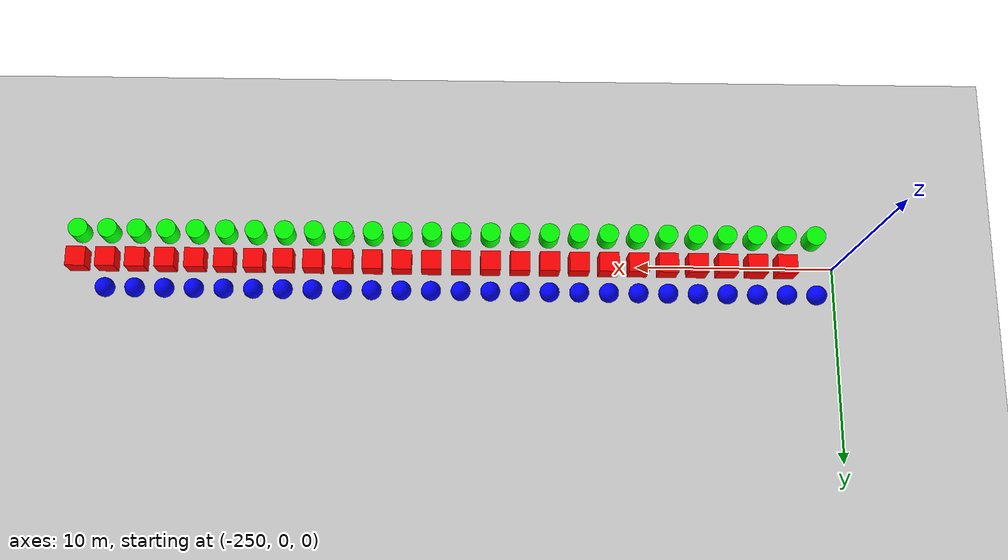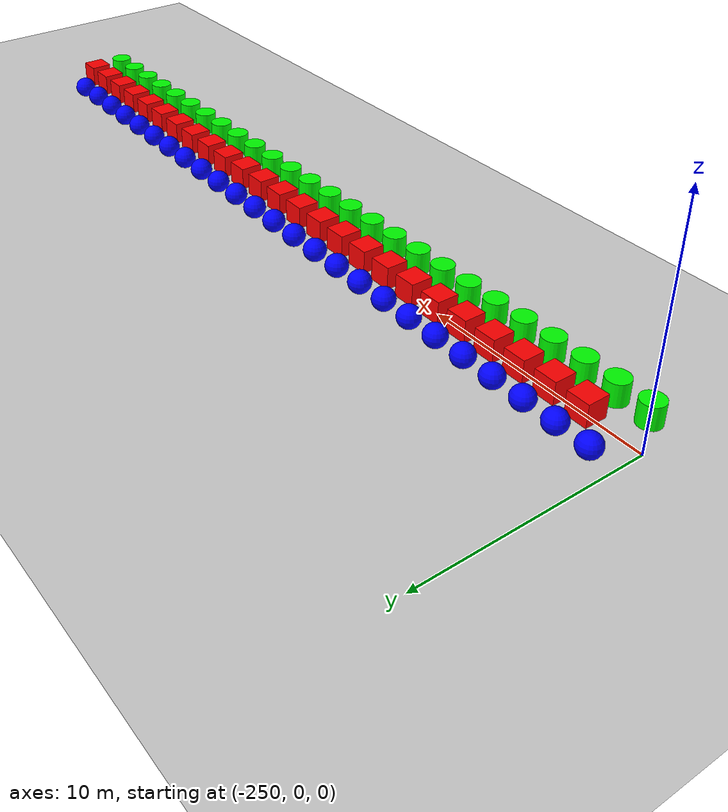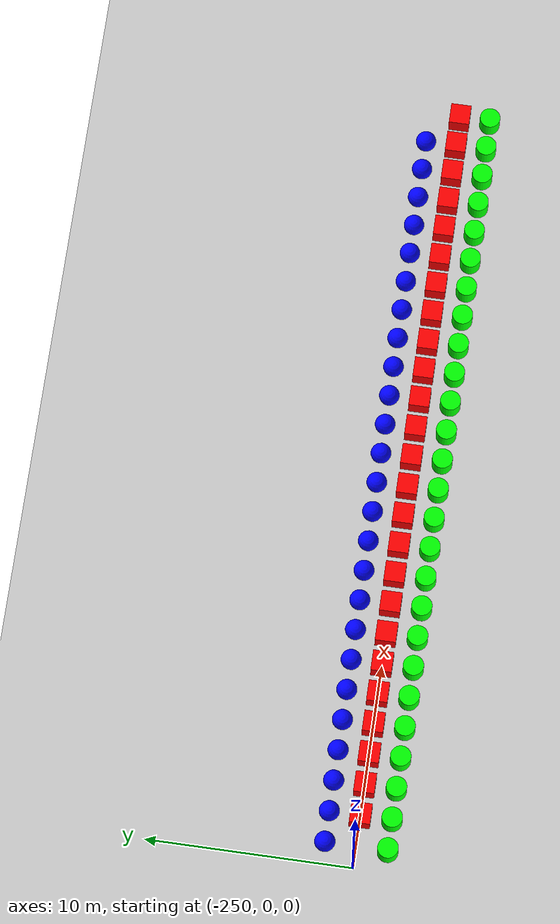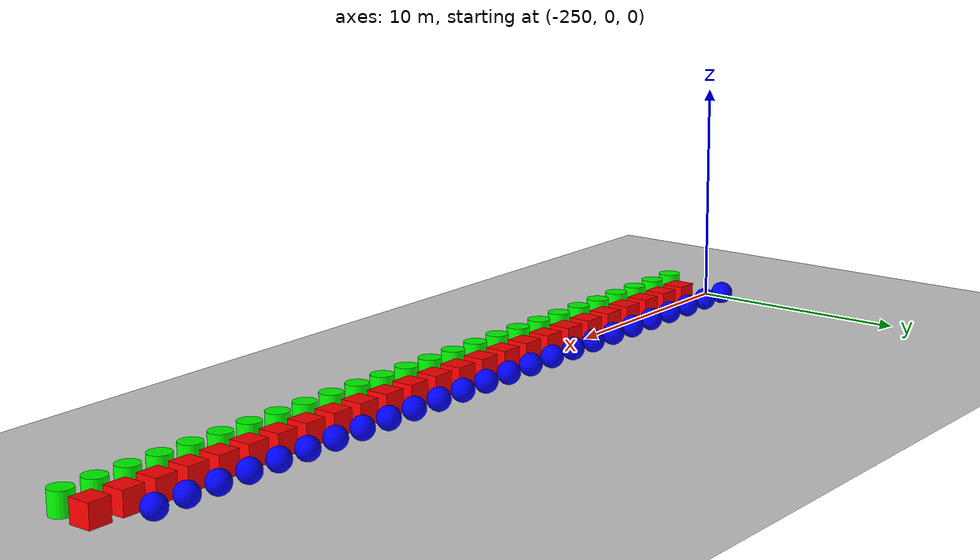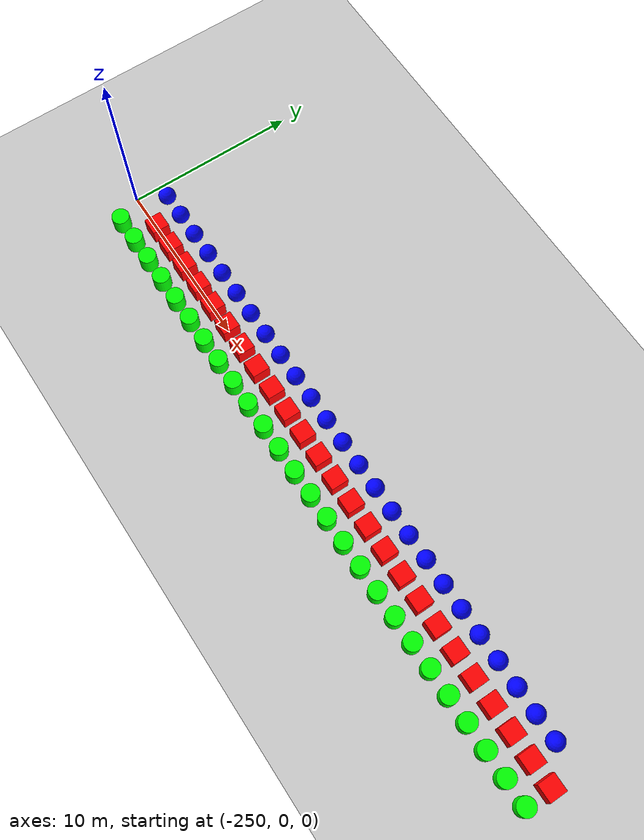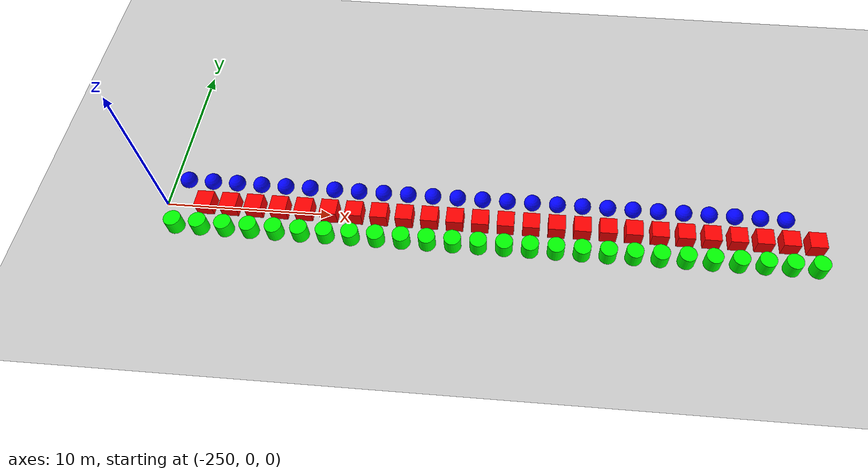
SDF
<sdf version="1.6">
 <world name="shapes">
  <model name="ground_plane">
   <static>true</static>
   <link name="link">
    <collision name="collision">
     <geometry><plane><normal>0 0 1</normal><size>100 100</size></plane></geometry>
    </collision>
    <visual name="visual">
     <geometry><plane><normal>0 0 1</normal><size>100 100</size></plane></geometry>
     <material>
      <ambient>0.8 0.8 0.8 1</ambient>
      <diffuse>0.8 0.8 0.8 1</diffuse>
      <specular>0.8 0.8 0.8 1</specular>
     </material>
    </visual>
   </link>
  </model>
  <model name="cylinder_334">
   <static>false</static>
   <pose>-249.0 -1.5 0.5 0 0 0</pose>
   <link name="cylinder_link">
    <inertial>
     <inertia><ixx>2</ixx><ixy>0</ixy><ixz>0</ixz><iyy>2</iyy><iyz>0</iyz><izz>2</izz></inertia>
     <mass>2.0</mass>
    </inertial>
    <collision name="cylinder_collision">
     <geometry><cylinder><radius>0.5</radius><length>1.0</length></cylinder></geometry>
    </collision>
    <visual name="cylinder_visual">
     <geometry><cylinder><radius>0.5</radius><length>1.0</length></cylinder></geometry>
     <material><ambient>0 1 0 1</ambient><diffuse>0 1 0 1</diffuse><specular>0 1 0 1</specular></material>
    </visual>
   </link>
  </model>
  <model name="sphere_334">
   <static>false</static>
   <pose>-249.0 1.5 0.5 0 0 0</pose>
   <link name="sphere_link">
    <inertial>
     <inertia><ixx>3</ixx><ixy>0</ixy><ixz>0</ixz><iyy>3</iyy><iyz>0</iyz><izz>3</izz></inertia>
     <mass>3.0</mass>
    </inertial>
    <collision name="sphere_collision"><geometry><sphere><radius>0.5</radius></sphere></geometry></collision>
    <visual name="sphere_visual">
     <geometry><sphere><radius>0.5</radius></sphere></geometry>
     <material><ambient>0 0 1 1</ambient><diffuse>0 0 1 1</diffuse><specular>0 0 1 1</specular></material>
    </visual>
   </link>
  </model>
  <model name="box_335">
   <static>false</static>
   <pose>-247.5 0 0.5 0 0 0</pose>
   <link name="box_link">
    <inertial>
     <inertia><ixx>1</ixx><ixy>0</ixy><ixz>0</ixz><iyy>1</iyy><iyz>0</iyz><izz>1</izz></inertia>
     <mass>1.0</mass>
    </inertial>
    <collision name="box_collision"><geometry><box><size>1 1 1</size></box></geometry></collision>
    <visual name="box_visual">
     <geometry><box><size>1 1 1</size></box></geometry>
     <material><ambient>1 0 0 1</ambient><diffuse>1 0 0 1</diffuse><specular>1 0 0 1</specular></material>
    </visual>
   </link>
  </model>
  <model name="cylinder_335">
   <static>false</static>
   <pose>-247.5 -1.5 0.5 0 0 0</pose>
   <link name="cylinder_link">
    <inertial>
     <inertia><ixx>2</ixx><ixy>0</ixy><ixz>0</ixz><iyy>2</iyy><iyz>0</iyz><izz>2</izz></inertia>
     <mass>2.0</mass>
    </inertial>
    <collision name="cylinder_collision">
     <geometry><cylinder><radius>0.5</radius><length>1.0</length></cylinder></geometry>
    </collision>
    <visual name="cylinder_visual">
     <geometry><cylinder><radius>0.5</radius><length>1.0</length></cylinder></geometry>
     <material><ambient>0 1 0 1</ambient><diffuse>0 1 0 1</diffuse><specular>0 1 0 1</specular></material>
    </visual>
   </link>
  </model>
  <model name="sphere_335">
   <static>false</static>
   <pose>-247.5 1.5 0.5 0 0 0</pose>
   <link name="sphere_link">
    <inertial>
     <inertia><ixx>3</ixx><ixy>0</ixy><ixz>0</ixz><iyy>3</iyy><iyz>0</iyz><izz>3</izz></inertia>
     <mass>3.0</mass>
    </inertial>
    <collision name="sphere_collision"><geometry><sphere><radius>0.5</radius></sphere></geometry></collision>
    <visual name="sphere_visual">
     <geometry><sphere><radius>0.5</radius></sphere></geometry>
     <material><ambient>0 0 1 1</ambient><diffuse>0 0 1 1</diffuse><specular>0 0 1 1</specular></material>
    </visual>
   </link>
  </model>
  <model name="box_336">
   <static>false</static>
   <pose>-246.0 0 0.5 0 0 0</pose>
   <link name="box_link">
    <inertial>
     <inertia><ixx>1</ixx><ixy>0</ixy><ixz>0</ixz><iyy>1</iyy><iyz>0</iyz><izz>1</izz></inertia>
     <mass>1.0</mass>
    </inertial>
    <collision name="box_collision"><geometry><box><size>1 1 1</size></box></geometry></collision>
    <visual name="box_visual">
     <geometry><box><size>1 1 1</size></box></geometry>
     <material><ambient>1 0 0 1</ambient><diffuse>1 0 0 1</diffuse><specular>1 0 0 1</specular></material>
    </visual>
   </link>
  </model>
  <model name="cylinder_336">
   <static>false</static>
   <pose>-246.0 -1.5 0.5 0 0 0</pose>
   <link name="cylinder_link">
    <inertial>
     <inertia><ixx>2</ixx><ixy>0</ixy><ixz>0</ixz><iyy>2</iyy><iyz>0</iyz><izz>2</izz></inertia>
     <mass>2.0</mass>
    </inertial>
    <collision name="cylinder_collision">
     <geometry><cylinder><radius>0.5</radius><length>1.0</length></cylinder></geometry>
    </collision>
    <visual name="cylinder_visual">
     <geometry><cylinder><radius>0.5</radius><length>1.0</length></cylinder></geometry>
     <material><ambient>0 1 0 1</ambient><diffuse>0 1 0 1</diffuse><specular>0 1 0 1</specular></material>
    </visual>
   </link>
  </model>
  <model name="sphere_336">
   <static>false</static>
   <pose>-246.0 1.5 0.5 0 0 0</pose>
   <link name="sphere_link">
    <inertial>
     <inertia><ixx>3</ixx><ixy>0</ixy><ixz>0</ixz><iyy>3</iyy><iyz>0</iyz><izz>3</izz></inertia>
     <mass>3.0</mass>
    </inertial>
    <collision name="sphere_collision"><geometry><sphere><radius>0.5</radius></sphere></geometry></collision>
    <visual name="sphere_visual">
     <geometry><sphere><radius>0.5</radius></sphere></geometry>
     <material><ambient>0 0 1 1</ambient><diffuse>0 0 1 1</diffuse><specular>0 0 1 1</specular></material>
    </visual>
   </link>
  </model>
  <model name="box_337">
   <static>false</static>
   <pose>-244.5 0 0.5 0 0 0</pose>
   <link name="box_link">
    <inertial>
     <inertia><ixx>1</ixx><ixy>0</ixy><ixz>0</ixz><iyy>1</iyy><iyz>0</iyz><izz>1</izz></inertia>
     <mass>1.0</mass>
    </inertial>
    <collision name="box_collision"><geometry><box><size>1 1 1</size></box></geometry></collision>
    <visual name="box_visual">
     <geometry><box><size>1 1 1</size></box></geometry>
     <material><ambient>1 0 0 1</ambient><diffuse>1 0 0 1</diffuse><specular>1 0 0 1</specular></material>
    </visual>
   </link>
  </model>
  <model name="cylinder_337">
   <static>false</static>
   <pose>-244.5 -1.5 0.5 0 0 0</pose>
   <link name="cylinder_link">
    <inertial>
     <inertia><ixx>2</ixx><ixy>0</ixy><ixz>0</ixz><iyy>2</iyy><iyz>0</iyz><izz>2</izz></inertia>
     <mass>2.0</mass>
    </inertial>
    <collision name="cylinder_collision">
     <geometry><cylinder><radius>0.5</radius><length>1.0</length></cylinder></geometry>
    </collision>
    <visual name="cylinder_visual">
     <geometry><cylinder><radius>0.5</radius><length>1.0</length></cylinder></geometry>
     <material><ambient>0 1 0 1</ambient><diffuse>0 1 0 1</diffuse><specular>0 1 0 1</specular></material>
    </visual>
   </link>
  </model>
  <model name="sphere_337">
   <static>false</static>
   <pose>-244.5 1.5 0.5 0 0 0</pose>
   <link name="sphere_link">
    <inertial>
     <inertia><ixx>3</ixx><ixy>0</ixy><ixz>0</ixz><iyy>3</iyy><iyz>0</iyz><izz>3</izz></inertia>
     <mass>3.0</mass>
    </inertial>
    <collision name="sphere_collision"><geometry><sphere><radius>0.5</radius></sphere></geometry></collision>
    <visual name="sphere_visual">
     <geometry><sphere><radius>0.5</radius></sphere></geometry>
     <material><ambient>0 0 1 1</ambient><diffuse>0 0 1 1</diffuse><specular>0 0 1 1</specular></material>
    </visual>
   </link>
  </model>
  <model name="box_338">
   <static>false</static>
   <pose>-243.0 0 0.5 0 0 0</pose>
   <link name="box_link">
    <inertial>
     <inertia><ixx>1</ixx><ixy>0</ixy><ixz>0</ixz><iyy>1</iyy><iyz>0</iyz><izz>1</izz></inertia>
     <mass>1.0</mass>
    </inertial>
    <collision name="box_collision"><geometry><box><size>1 1 1</size></box></geometry></collision>
    <visual name="box_visual">
     <geometry><box><size>1 1 1</size></box></geometry>
     <material><ambient>1 0 0 1</ambient><diffuse>1 0 0 1</diffuse><specular>1 0 0 1</specular></material>
    </visual>
   </link>
  </model>
  <model name="cylinder_338">
   <static>false</static>
   <pose>-243.0 -1.5 0.5 0 0 0</pose>
   <link name="cylinder_link">
    <inertial>
     <inertia><ixx>2</ixx><ixy>0</ixy><ixz>0</ixz><iyy>2</iyy><iyz>0</iyz><izz>2</izz></inertia>
     <mass>2.0</mass>
    </inertial>
    <collision name="cylinder_collision">
     <geometry><cylinder><radius>0.5</radius><length>1.0</length></cylinder></geometry>
    </collision>
    <visual name="cylinder_visual">
     <geometry><cylinder><radius>0.5</radius><length>1.0</length></cylinder></geometry>
     <material><ambient>0 1 0 1</ambient><diffuse>0 1 0 1</diffuse><specular>0 1 0 1</specular></material>
    </visual>
   </link>
  </model>
  <model name="sphere_338">
   <static>false</static>
   <pose>-243.0 1.5 0.5 0 0 0</pose>
   <link name="sphere_link">
    <inertial>
     <inertia><ixx>3</ixx><ixy>0</ixy><ixz>0</ixz><iyy>3</iyy><iyz>0</iyz><izz>3</izz></inertia>
     <mass>3.0</mass>
    </inertial>
    <collision name="sphere_collision"><geometry><sphere><radius>0.5</radius></sphere></geometry></collision>
    <visual name="sphere_visual">
     <geometry><sphere><radius>0.5</radius></sphere></geometry>
     <material><ambient>0 0 1 1</ambient><diffuse>0 0 1 1</diffuse><specular>0 0 1 1</specular></material>
    </visual>
   </link>
  </model>
  <model name="box_339">
   <static>false</static>
   <pose>-241.5 0 0.5 0 0 0</pose>
   <link name="box_link">
    <inertial>
     <inertia><ixx>1</ixx><ixy>0</ixy><ixz>0</ixz><iyy>1</iyy><iyz>0</iyz><izz>1</izz></inertia>
     <mass>1.0</mass>
    </inertial>
    <collision name="box_collision"><geometry><box><size>1 1 1</size></box></geometry></collision>
    <visual name="box_visual">
     <geometry><box><size>1 1 1</size></box></geometry>
     <material><ambient>1 0 0 1</ambient><diffuse>1 0 0 1</diffuse><specular>1 0 0 1</specular></material>
    </visual>
   </link>
  </model>
  <model name="cylinder_339">
   <static>false</static>
   <pose>-241.5 -1.5 0.5 0 0 0</pose>
   <link name="cylinder_link">
    <inertial>
     <inertia><ixx>2</ixx><ixy>0</ixy><ixz>0</ixz><iyy>2</iyy><iyz>0</iyz><izz>2</izz></inertia>
     <mass>2.0</mass>
    </inertial>
    <collision name="cylinder_collision">
     <geometry><cylinder><radius>0.5</radius><length>1.0</length></cylinder></geometry>
    </collision>
    <visual name="cylinder_visual">
     <geometry><cylinder><radius>0.5</radius><length>1.0</length></cylinder></geometry>
     <material><ambient>0 1 0 1</ambient><diffuse>0 1 0 1</diffuse><specular>0 1 0 1</specular></material>
    </visual>
   </link>
  </model>
  <model name="sphere_339">
   <static>false</static>
   <pose>-241.5 1.5 0.5 0 0 0</pose>
   <link name="sphere_link">
    <inertial>
     <inertia><ixx>3</ixx><ixy>0</ixy><ixz>0</ixz><iyy>3</iyy><iyz>0</iyz><izz>3</izz></inertia>
     <mass>3.0</mass>
    </inertial>
    <collision name="sphere_collision"><geometry><sphere><radius>0.5</radius></sphere></geometry></collision>
    <visual name="sphere_visual">
     <geometry><sphere><radius>0.5</radius></sphere></geometry>
     <material><ambient>0 0 1 1</ambient><diffuse>0 0 1 1</diffuse><specular>0 0 1 1</specular></material>
    </visual>
   </link>
  </model>
  <model name="box_340">
   <static>false</static>
   <pose>-240.0 0 0.5 0 0 0</pose>
   <link name="box_link">
    <inertial>
     <inertia><ixx>1</ixx><ixy>0</ixy><ixz>0</ixz><iyy>1</iyy><iyz>0</iyz><izz>1</izz></inertia>
     <mass>1.0</mass>
    </inertial>
    <collision name="box_collision"><geometry><box><size>1 1 1</size></box></geometry></collision>
    <visual name="box_visual">
     <geometry><box><size>1 1 1</size></box></geometry>
     <material><ambient>1 0 0 1</ambient><diffuse>1 0 0 1</diffuse><specular>1 0 0 1</specular></material>
    </visual>
   </link>
  </model>
  <model name="cylinder_340">
   <static>false</static>
   <pose>-240.0 -1.5 0.5 0 0 0</pose>
   <link name="cylinder_link">
    <inertial>
     <inertia><ixx>2</ixx><ixy>0</ixy><ixz>0</ixz><iyy>2</iyy><iyz>0</iyz><izz>2</izz></inertia>
     <mass>2.0</mass>
    </inertial>
    <collision name="cylinder_collision">
     <geometry><cylinder><radius>0.5</radius><length>1.0</length></cylinder></geometry>
    </collision>
    <visual name="cylinder_visual">
     <geometry><cylinder><radius>0.5</radius><length>1.0</length></cylinder></geometry>
     <material><ambient>0 1 0 1</ambient><diffuse>0 1 0 1</diffuse><specular>0 1 0 1</specular></material>
    </visual>
   </link>
  </model>
  <model name="sphere_340">
   <static>false</static>
   <pose>-240.0 1.5 0.5 0 0 0</pose>
   <link name="sphere_link">
    <inertial>
     <inertia><ixx>3</ixx><ixy>0</ixy><ixz>0</ixz><iyy>3</iyy><iyz>0</iyz><izz>3</izz></inertia>
     <mass>3.0</mass>
    </inertial>
    <collision name="sphere_collision"><geometry><sphere><radius>0.5</radius></sphere></geometry></collision>
    <visual name="sphere_visual">
     <geometry><sphere><radius>0.5</radius></sphere></geometry>
     <material><ambient>0 0 1 1</ambient><diffuse>0 0 1 1</diffuse><specular>0 0 1 1</specular></material>
    </visual>
   </link>
  </model>
  <model name="box_341">
   <static>false</static>
   <pose>-238.5 0 0.5 0 0 0</pose>
   <link name="box_link">
    <inertial>
     <inertia><ixx>1</ixx><ixy>0</ixy><ixz>0</ixz><iyy>1</iyy><iyz>0</iyz><izz>1</izz></inertia>
     <mass>1.0</mass>
    </inertial>
    <collision name="box_collision"><geometry><box><size>1 1 1</size></box></geometry></collision>
    <visual name="box_visual">
     <geometry><box><size>1 1 1</size></box></geometry>
     <material><ambient>1 0 0 1</ambient><diffuse>1 0 0 1</diffuse><specular>1 0 0 1</specular></material>
    </visual>
   </link>
  </model>
  <model name="cylinder_341">
   <static>false</static>
   <pose>-238.5 -1.5 0.5 0 0 0</pose>
   <link name="cylinder_link">
    <inertial>
     <inertia><ixx>2</ixx><ixy>0</ixy><ixz>0</ixz><iyy>2</iyy><iyz>0</iyz><izz>2</izz></inertia>
     <mass>2.0</mass>
    </inertial>
    <collision name="cylinder_collision">
     <geometry><cylinder><radius>0.5</radius><length>1.0</length></cylinder></geometry>
    </collision>
    <visual name="cylinder_visual">
     <geometry><cylinder><radius>0.5</radius><length>1.0</length></cylinder></geometry>
     <material><ambient>0 1 0 1</ambient><diffuse>0 1 0 1</diffuse><specular>0 1 0 1</specular></material>
    </visual>
   </link>
  </model>
  <model name="sphere_341">
   <static>false</static>
   <pose>-238.5 1.5 0.5 0 0 0</pose>
   <link name="sphere_link">
    <inertial>
     <inertia><ixx>3</ixx><ixy>0</ixy><ixz>0</ixz><iyy>3</iyy><iyz>0</iyz><izz>3</izz></inertia>
     <mass>3.0</mass>
    </inertial>
    <collision name="sphere_collision"><geometry><sphere><radius>0.5</radius></sphere></geometry></collision>
    <visual name="sphere_visual">
     <geometry><sphere><radius>0.5</radius></sphere></geometry>
     <material><ambient>0 0 1 1</ambient><diffuse>0 0 1 1</diffuse><specular>0 0 1 1</specular></material>
    </visual>
   </link>
  </model>
  <model name="box_342">
   <static>false</static>
   <pose>-237.0 0 0.5 0 0 0</pose>
   <link name="box_link">
    <inertial>
     <inertia><ixx>1</ixx><ixy>0</ixy><ixz>0</ixz><iyy>1</iyy><iyz>0</iyz><izz>1</izz></inertia>
     <mass>1.0</mass>
    </inertial>
    <collision name="box_collision"><geometry><box><size>1 1 1</size></box></geometry></collision>
    <visual name="box_visual">
     <geometry><box><size>1 1 1</size></box></geometry>
     <material><ambient>1 0 0 1</ambient><diffuse>1 0 0 1</diffuse><specular>1 0 0 1</specular></material>
    </visual>
   </link>
  </model>
  <model name="cylinder_342">
   <static>false</static>
   <pose>-237.0 -1.5 0.5 0 0 0</pose>
   <link name="cylinder_link">
    <inertial>
     <inertia><ixx>2</ixx><ixy>0</ixy><ixz>0</ixz><iyy>2</iyy><iyz>0</iyz><izz>2</izz></inertia>
     <mass>2.0</mass>
    </inertial>
    <collision name="cylinder_collision">
     <geometry><cylinder><radius>0.5</radius><length>1.0</length></cylinder></geometry>
    </collision>
    <visual name="cylinder_visual">
     <geometry><cylinder><radius>0.5</radius><length>1.0</length></cylinder></geometry>
     <material><ambient>0 1 0 1</ambient><diffuse>0 1 0 1</diffuse><specular>0 1 0 1</specular></material>
    </visual>
   </link>
  </model>
  <model name="sphere_342">
   <static>false</static>
   <pose>-237.0 1.5 0.5 0 0 0</pose>
   <link name="sphere_link">
    <inertial>
     <inertia><ixx>3</ixx><ixy>0</ixy><ixz>0</ixz><iyy>3</iyy><iyz>0</iyz><izz>3</izz></inertia>
     <mass>3.0</mass>
    </inertial>
    <collision name="sphere_collision"><geometry><sphere><radius>0.5</radius></sphere></geometry></collision>
    <visual name="sphere_visual">
     <geometry><sphere><radius>0.5</radius></sphere></geometry>
     <material><ambient>0 0 1 1</ambient><diffuse>0 0 1 1</diffuse><specular>0 0 1 1</specular></material>
    </visual>
   </link>
  </model>
  <model name="box_343">
   <static>false</static>
   <pose>-235.5 0 0.5 0 0 0</pose>
   <link name="box_link">
    <inertial>
     <inertia><ixx>1</ixx><ixy>0</ixy><ixz>0</ixz><iyy>1</iyy><iyz>0</iyz><izz>1</izz></inertia>
     <mass>1.0</mass>
    </inertial>
    <collision name="box_collision"><geometry><box><size>1 1 1</size></box></geometry></collision>
    <visual name="box_visual">
     <geometry><box><size>1 1 1</size></box></geometry>
     <material><ambient>1 0 0 1</ambient><diffuse>1 0 0 1</diffuse><specular>1 0 0 1</specular></material>
    </visual>
   </link>
  </model>
  <model name="cylinder_343">
   <static>false</static>
   <pose>-235.5 -1.5 0.5 0 0 0</pose>
   <link name="cylinder_link">
    <inertial>
     <inertia><ixx>2</ixx><ixy>0</ixy><ixz>0</ixz><iyy>2</iyy><iyz>0</iyz><izz>2</izz></inertia>
     <mass>2.0</mass>
    </inertial>
    <collision name="cylinder_collision">
     <geometry><cylinder><radius>0.5</radius><length>1.0</length></cylinder></geometry>
    </collision>
    <visual name="cylinder_visual">
     <geometry><cylinder><radius>0.5</radius><length>1.0</length></cylinder></geometry>
     <material><ambient>0 1 0 1</ambient><diffuse>0 1 0 1</diffuse><specular>0 1 0 1</specular></material>
    </visual>
   </link>
  </model>
  <model name="sphere_343">
   <static>false</static>
   <pose>-235.5 1.5 0.5 0 0 0</pose>
   <link name="sphere_link">
    <inertial>
     <inertia><ixx>3</ixx><ixy>0</ixy><ixz>0</ixz><iyy>3</iyy><iyz>0</iyz><izz>3</izz></inertia>
     <mass>3.0</mass>
    </inertial>
    <collision name="sphere_collision"><geometry><sphere><radius>0.5</radius></sphere></geometry></collision>
    <visual name="sphere_visual">
     <geometry><sphere><radius>0.5</radius></sphere></geometry>
     <material><ambient>0 0 1 1</ambient><diffuse>0 0 1 1</diffuse><specular>0 0 1 1</specular></material>
    </visual>
   </link>
  </model>
  <model name="box_344">
   <static>false</static>
   <pose>-234.0 0 0.5 0 0 0</pose>
   <link name="box_link">
    <inertial>
     <inertia><ixx>1</ixx><ixy>0</ixy><ixz>0</ixz><iyy>1</iyy><iyz>0</iyz><izz>1</izz></inertia>
     <mass>1.0</mass>
    </inertial>
    <collision name="box_collision"><geometry><box><size>1 1 1</size></box></geometry></collision>
    <visual name="box_visual">
     <geometry><box><size>1 1 1</size></box></geometry>
     <material><ambient>1 0 0 1</ambient><diffuse>1 0 0 1</diffuse><specular>1 0 0 1</specular></material>
    </visual>
   </link>
  </model>
  <model name="cylinder_344">
   <static>false</static>
   <pose>-234.0 -1.5 0.5 0 0 0</pose>
   <link name="cylinder_link">
    <inertial>
     <inertia><ixx>2</ixx><ixy>0</ixy><ixz>0</ixz><iyy>2</iyy><iyz>0</iyz><izz>2</izz></inertia>
     <mass>2.0</mass>
    </inertial>
    <collision name="cylinder_collision">
     <geometry><cylinder><radius>0.5</radius><length>1.0</length></cylinder></geometry>
    </collision>
    <visual name="cylinder_visual">
     <geometry><cylinder><radius>0.5</radius><length>1.0</length></cylinder></geometry>
     <material><ambient>0 1 0 1</ambient><diffuse>0 1 0 1</diffuse><specular>0 1 0 1</specular></material>
    </visual>
   </link>
  </model>
  <model name="sphere_344">
   <static>false</static>
   <pose>-234.0 1.5 0.5 0 0 0</pose>
   <link name="sphere_link">
    <inertial>
     <inertia><ixx>3</ixx><ixy>0</ixy><ixz>0</ixz><iyy>3</iyy><iyz>0</iyz><izz>3</izz></inertia>
     <mass>3.0</mass>
    </inertial>
    <collision name="sphere_collision"><geometry><sphere><radius>0.5</radius></sphere></geometry></collision>
    <visual name="sphere_visual">
     <geometry><sphere><radius>0.5</radius></sphere></geometry>
     <material><ambient>0 0 1 1</ambient><diffuse>0 0 1 1</diffuse><specular>0 0 1 1</specular></material>
    </visual>
   </link>
  </model>
  <model name="box_345">
   <static>false</static>
   <pose>-232.5 0 0.5 0 0 0</pose>
   <link name="box_link">
    <inertial>
     <inertia><ixx>1</ixx><ixy>0</ixy><ixz>0</ixz><iyy>1</iyy><iyz>0</iyz><izz>1</izz></inertia>
     <mass>1.0</mass>
    </inertial>
    <collision name="box_collision"><geometry><box><size>1 1 1</size></box></geometry></collision>
    <visual name="box_visual">
     <geometry><box><size>1 1 1</size></box></geometry>
     <material><ambient>1 0 0 1</ambient><diffuse>1 0 0 1</diffuse><specular>1 0 0 1</specular></material>
    </visual>
   </link>
  </model>
  <model name="cylinder_345">
   <static>false</static>
   <pose>-232.5 -1.5 0.5 0 0 0</pose>
   <link name="cylinder_link">
    <inertial>
     <inertia><ixx>2</ixx><ixy>0</ixy><ixz>0</ixz><iyy>2</iyy><iyz>0</iyz><izz>2</izz></inertia>
     <mass>2.0</mass>
    </inertial>
    <collision name="cylinder_collision">
     <geometry><cylinder><radius>0.5</radius><length>1.0</length></cylinder></geometry>
    </collision>
    <visual name="cylinder_visual">
     <geometry><cylinder><radius>0.5</radius><length>1.0</length></cylinder></geometry>
     <material><ambient>0 1 0 1</ambient><diffuse>0 1 0 1</diffuse><specular>0 1 0 1</specular></material>
    </visual>
   </link>
  </model>
  <model name="sphere_345">
   <static>false</static>
   <pose>-232.5 1.5 0.5 0 0 0</pose>
   <link name="sphere_link">
    <inertial>
     <inertia><ixx>3</ixx><ixy>0</ixy><ixz>0</ixz><iyy>3</iyy><iyz>0</iyz><izz>3</izz></inertia>
     <mass>3.0</mass>
    </inertial>
    <collision name="sphere_collision"><geometry><sphere><radius>0.5</radius></sphere></geometry></collision>
    <visual name="sphere_visual">
     <geometry><sphere><radius>0.5</radius></sphere></geometry>
     <material><ambient>0 0 1 1</ambient><diffuse>0 0 1 1</diffuse><specular>0 0 1 1</specular></material>
    </visual>
   </link>
  </model>
  <model name="box_346">
   <static>false</static>
   <pose>-231.0 0 0.5 0 0 0</pose>
   <link name="box_link">
    <inertial>
     <inertia><ixx>1</ixx><ixy>0</ixy><ixz>0</ixz><iyy>1</iyy><iyz>0</iyz><izz>1</izz></inertia>
     <mass>1.0</mass>
    </inertial>
    <collision name="box_collision"><geometry><box><size>1 1 1</size></box></geometry></collision>
    <visual name="box_visual">
     <geometry><box><size>1 1 1</size></box></geometry>
     <material><ambient>1 0 0 1</ambient><diffuse>1 0 0 1</diffuse><specular>1 0 0 1</specular></material>
    </visual>
   </link>
  </model>
  <model name="cylinder_346">
   <static>false</static>
   <pose>-231.0 -1.5 0.5 0 0 0</pose>
   <link name="cylinder_link">
    <inertial>
     <inertia><ixx>2</ixx><ixy>0</ixy><ixz>0</ixz><iyy>2</iyy><iyz>0</iyz><izz>2</izz></inertia>
     <mass>2.0</mass>
    </inertial>
    <collision name="cylinder_collision">
     <geometry><cylinder><radius>0.5</radius><length>1.0</length></cylinder></geometry>
    </collision>
    <visual name="cylinder_visual">
     <geometry><cylinder><radius>0.5</radius><length>1.0</length></cylinder></geometry>
     <material><ambient>0 1 0 1</ambient><diffuse>0 1 0 1</diffuse><specular>0 1 0 1</specular></material>
    </visual>
   </link>
  </model>
  <model name="sphere_346">
   <static>false</static>
   <pose>-231.0 1.5 0.5 0 0 0</pose>
   <link name="sphere_link">
    <inertial>
     <inertia><ixx>3</ixx><ixy>0</ixy><ixz>0</ixz><iyy>3</iyy><iyz>0</iyz><izz>3</izz></inertia>
     <mass>3.0</mass>
    </inertial>
    <collision name="sphere_collision"><geometry><sphere><radius>0.5</radius></sphere></geometry></collision>
    <visual name="sphere_visual">
     <geometry><sphere><radius>0.5</radius></sphere></geometry>
     <material><ambient>0 0 1 1</ambient><diffuse>0 0 1 1</diffuse><specular>0 0 1 1</specular></material>
    </visual>
   </link>
  </model>
  <model name="box_347">
   <static>false</static>
   <pose>-229.5 0 0.5 0 0 0</pose>
   <link name="box_link">
    <inertial>
     <inertia><ixx>1</ixx><ixy>0</ixy><ixz>0</ixz><iyy>1</iyy><iyz>0</iyz><izz>1</izz></inertia>
     <mass>1.0</mass>
    </inertial>
    <collision name="box_collision"><geometry><box><size>1 1 1</size></box></geometry></collision>
    <visual name="box_visual">
     <geometry><box><size>1 1 1</size></box></geometry>
     <material><ambient>1 0 0 1</ambient><diffuse>1 0 0 1</diffuse><specular>1 0 0 1</specular></material>
    </visual>
   </link>
  </model>
  <model name="cylinder_347">
   <static>false</static>
   <pose>-229.5 -1.5 0.5 0 0 0</pose>
   <link name="cylinder_link">
    <inertial>
     <inertia><ixx>2</ixx><ixy>0</ixy><ixz>0</ixz><iyy>2</iyy><iyz>0</iyz><izz>2</izz></inertia>
     <mass>2.0</mass>
    </inertial>
    <collision name="cylinder_collision">
     <geometry><cylinder><radius>0.5</radius><length>1.0</length></cylinder></geometry>
    </collision>
    <visual name="cylinder_visual">
     <geometry><cylinder><radius>0.5</radius><length>1.0</length></cylinder></geometry>
     <material><ambient>0 1 0 1</ambient><diffuse>0 1 0 1</diffuse><specular>0 1 0 1</specular></material>
    </visual>
   </link>
  </model>
  <model name="sphere_347">
   <static>false</static>
   <pose>-229.5 1.5 0.5 0 0 0</pose>
   <link name="sphere_link">
    <inertial>
     <inertia><ixx>3</ixx><ixy>0</ixy><ixz>0</ixz><iyy>3</iyy><iyz>0</iyz><izz>3</izz></inertia>
     <mass>3.0</mass>
    </inertial>
    <collision name="sphere_collision"><geometry><sphere><radius>0.5</radius></sphere></geometry></collision>
    <visual name="sphere_visual">
     <geometry><sphere><radius>0.5</radius></sphere></geometry>
     <material><ambient>0 0 1 1</ambient><diffuse>0 0 1 1</diffuse><specular>0 0 1 1</specular></material>
    </visual>
   </link>
  </model>
  <model name="box_348">
   <static>false</static>
   <pose>-228.0 0 0.5 0 0 0</pose>
   <link name="box_link">
    <inertial>
     <inertia><ixx>1</ixx><ixy>0</ixy><ixz>0</ixz><iyy>1</iyy><iyz>0</iyz><izz>1</izz></inertia>
     <mass>1.0</mass>
    </inertial>
    <collision name="box_collision"><geometry><box><size>1 1 1</size></box></geometry></collision>
    <visual name="box_visual">
     <geometry><box><size>1 1 1</size></box></geometry>
     <material><ambient>1 0 0 1</ambient><diffuse>1 0 0 1</diffuse><specular>1 0 0 1</specular></material>
    </visual>
   </link>
  </model>
  <model name="cylinder_348">
   <static>false</static>
   <pose>-228.0 -1.5 0.5 0 0 0</pose>
   <link name="cylinder_link">
    <inertial>
     <inertia><ixx>2</ixx><ixy>0</ixy><ixz>0</ixz><iyy>2</iyy><iyz>0</iyz><izz>2</izz></inertia>
     <mass>2.0</mass>
    </inertial>
    <collision name="cylinder_collision">
     <geometry><cylinder><radius>0.5</radius><length>1.0</length></cylinder></geometry>
    </collision>
    <visual name="cylinder_visual">
     <geometry><cylinder><radius>0.5</radius><length>1.0</length></cylinder></geometry>
     <material><ambient>0 1 0 1</ambient><diffuse>0 1 0 1</diffuse><specular>0 1 0 1</specular></material>
    </visual>
   </link>
  </model>
  <model name="sphere_348">
   <static>false</static>
   <pose>-228.0 1.5 0.5 0 0 0</pose>
   <link name="sphere_link">
    <inertial>
     <inertia><ixx>3</ixx><ixy>0</ixy><ixz>0</ixz><iyy>3</iyy><iyz>0</iyz><izz>3</izz></inertia>
     <mass>3.0</mass>
    </inertial>
    <collision name="sphere_collision"><geometry><sphere><radius>0.5</radius></sphere></geometry></collision>
    <visual name="sphere_visual">
     <geometry><sphere><radius>0.5</radius></sphere></geometry>
     <material><ambient>0 0 1 1</ambient><diffuse>0 0 1 1</diffuse><specular>0 0 1 1</specular></material>
    </visual>
   </link>
  </model>
  <model name="box_349">
   <static>false</static>
   <pose>-226.5 0 0.5 0 0 0</pose>
   <link name="box_link">
    <inertial>
     <inertia><ixx>1</ixx><ixy>0</ixy><ixz>0</ixz><iyy>1</iyy><iyz>0</iyz><izz>1</izz></inertia>
     <mass>1.0</mass>
    </inertial>
    <collision name="box_collision"><geometry><box><size>1 1 1</size></box></geometry></collision>
    <visual name="box_visual">
     <geometry><box><size>1 1 1</size></box></geometry>
     <material><ambient>1 0 0 1</ambient><diffuse>1 0 0 1</diffuse><specular>1 0 0 1</specular></material>
    </visual>
   </link>
  </model>
  <model name="cylinder_349">
   <static>false</static>
   <pose>-226.5 -1.5 0.5 0 0 0</pose>
   <link name="cylinder_link">
    <inertial>
     <inertia><ixx>2</ixx><ixy>0</ixy><ixz>0</ixz><iyy>2</iyy><iyz>0</iyz><izz>2</izz></inertia>
     <mass>2.0</mass>
    </inertial>
    <collision name="cylinder_collision">
     <geometry><cylinder><radius>0.5</radius><length>1.0</length></cylinder></geometry>
    </collision>
    <visual name="cylinder_visual">
     <geometry><cylinder><radius>0.5</radius><length>1.0</length></cylinder></geometry>
     <material><ambient>0 1 0 1</ambient><diffuse>0 1 0 1</diffuse><specular>0 1 0 1</specular></material>
    </visual>
   </link>
  </model>
  <model name="sphere_349">
   <static>false</static>
   <pose>-226.5 1.5 0.5 0 0 0</pose>
   <link name="sphere_link">
    <inertial>
     <inertia><ixx>3</ixx><ixy>0</ixy><ixz>0</ixz><iyy>3</iyy><iyz>0</iyz><izz>3</izz></inertia>
     <mass>3.0</mass>
    </inertial>
    <collision name="sphere_collision"><geometry><sphere><radius>0.5</radius></sphere></geometry></collision>
    <visual name="sphere_visual">
     <geometry><sphere><radius>0.5</radius></sphere></geometry>
     <material><ambient>0 0 1 1</ambient><diffuse>0 0 1 1</diffuse><specular>0 0 1 1</specular></material>
    </visual>
   </link>
  </model>
  <model name="box_350">
   <static>false</static>
   <pose>-225.0 0 0.5 0 0 0</pose>
   <link name="box_link">
    <inertial>
     <inertia><ixx>1</ixx><ixy>0</ixy><ixz>0</ixz><iyy>1</iyy><iyz>0</iyz><izz>1</izz></inertia>
     <mass>1.0</mass>
    </inertial>
    <collision name="box_collision"><geometry><box><size>1 1 1</size></box></geometry></collision>
    <visual name="box_visual">
     <geometry><box><size>1 1 1</size></box></geometry>
     <material><ambient>1 0 0 1</ambient><diffuse>1 0 0 1</diffuse><specular>1 0 0 1</specular></material>
    </visual>
   </link>
  </model>
  <model name="cylinder_350">
   <static>false</static>
   <pose>-225.0 -1.5 0.5 0 0 0</pose>
   <link name="cylinder_link">
    <inertial>
     <inertia><ixx>2</ixx><ixy>0</ixy><ixz>0</ixz><iyy>2</iyy><iyz>0</iyz><izz>2</izz></inertia>
     <mass>2.0</mass>
    </inertial>
    <collision name="cylinder_collision">
     <geometry><cylinder><radius>0.5</radius><length>1.0</length></cylinder></geometry>
    </collision>
    <visual name="cylinder_visual">
     <geometry><cylinder><radius>0.5</radius><length>1.0</length></cylinder></geometry>
     <material><ambient>0 1 0 1</ambient><diffuse>0 1 0 1</diffuse><specular>0 1 0 1</specular></material>
    </visual>
   </link>
  </model>
  <model name="sphere_350">
   <static>false</static>
   <pose>-225.0 1.5 0.5 0 0 0</pose>
   <link name="sphere_link">
    <inertial>
     <inertia><ixx>3</ixx><ixy>0</ixy><ixz>0</ixz><iyy>3</iyy><iyz>0</iyz><izz>3</izz></inertia>
     <mass>3.0</mass>
    </inertial>
    <collision name="sphere_collision"><geometry><sphere><radius>0.5</radius></sphere></geometry></collision>
    <visual name="sphere_visual">
     <geometry><sphere><radius>0.5</radius></sphere></geometry>
     <material><ambient>0 0 1 1</ambient><diffuse>0 0 1 1</diffuse><specular>0 0 1 1</specular></material>
    </visual>
   </link>
  </model>
  <model name="box_351">
   <static>false</static>
   <pose>-223.5 0 0.5 0 0 0</pose>
   <link name="box_link">
    <inertial>
     <inertia><ixx>1</ixx><ixy>0</ixy><ixz>0</ixz><iyy>1</iyy><iyz>0</iyz><izz>1</izz></inertia>
     <mass>1.0</mass>
    </inertial>
    <collision name="box_collision"><geometry><box><size>1 1 1</size></box></geometry></collision>
    <visual name="box_visual">
     <geometry><box><size>1 1 1</size></box></geometry>
     <material><ambient>1 0 0 1</ambient><diffuse>1 0 0 1</diffuse><specular>1 0 0 1</specular></material>
    </visual>
   </link>
  </model>
  <model name="cylinder_351">
   <static>false</static>
   <pose>-223.5 -1.5 0.5 0 0 0</pose>
   <link name="cylinder_link">
    <inertial>
     <inertia><ixx>2</ixx><ixy>0</ixy><ixz>0</ixz><iyy>2</iyy><iyz>0</iyz><izz>2</izz></inertia>
     <mass>2.0</mass>
    </inertial>
    <collision name="cylinder_collision">
     <geometry><cylinder><radius>0.5</radius><length>1.0</length></cylinder></geometry>
    </collision>
    <visual name="cylinder_visual">
     <geometry><cylinder><radius>0.5</radius><length>1.0</length></cylinder></geometry>
     <material><ambient>0 1 0 1</ambient><diffuse>0 1 0 1</diffuse><specular>0 1 0 1</specular></material>
    </visual>
   </link>
  </model>
  <model name="sphere_351">
   <static>false</static>
   <pose>-223.5 1.5 0.5 0 0 0</pose>
   <link name="sphere_link">
    <inertial>
     <inertia><ixx>3</ixx><ixy>0</ixy><ixz>0</ixz><iyy>3</iyy><iyz>0</iyz><izz>3</izz></inertia>
     <mass>3.0</mass>
    </inertial>
    <collision name="sphere_collision"><geometry><sphere><radius>0.5</radius></sphere></geometry></collision>
    <visual name="sphere_visual">
     <geometry><sphere><radius>0.5</radius></sphere></geometry>
     <material><ambient>0 0 1 1</ambient><diffuse>0 0 1 1</diffuse><specular>0 0 1 1</specular></material>
    </visual>
   </link>
  </model>
  <model name="box_352">
   <static>false</static>
   <pose>-222.0 0 0.5 0 0 0</pose>
   <link name="box_link">
    <inertial>
     <inertia><ixx>1</ixx><ixy>0</ixy><ixz>0</ixz><iyy>1</iyy><iyz>0</iyz><izz>1</izz></inertia>
     <mass>1.0</mass>
    </inertial>
    <collision name="box_collision"><geometry><box><size>1 1 1</size></box></geometry></collision>
    <visual name="box_visual">
     <geometry><box><size>1 1 1</size></box></geometry>
     <material><ambient>1 0 0 1</ambient><diffuse>1 0 0 1</diffuse><specular>1 0 0 1</specular></material>
    </visual>
   </link>
  </model>
  <model name="cylinder_352">
   <static>false</static>
   <pose>-222.0 -1.5 0.5 0 0 0</pose>
   <link name="cylinder_link">
    <inertial>
     <inertia><ixx>2</ixx><ixy>0</ixy><ixz>0</ixz><iyy>2</iyy><iyz>0</iyz><izz>2</izz></inertia>
     <mass>2.0</mass>
    </inertial>
    <collision name="cylinder_collision">
     <geometry><cylinder><radius>0.5</radius><length>1.0</length></cylinder></geometry>
    </collision>
    <visual name="cylinder_visual">
     <geometry><cylinder><radius>0.5</radius><length>1.0</length></cylinder></geometry>
     <material><ambient>0 1 0 1</ambient><diffuse>0 1 0 1</diffuse><specular>0 1 0 1</specular></material>
    </visual>
   </link>
  </model>
  <model name="sphere_352">
   <static>false</static>
   <pose>-222.0 1.5 0.5 0 0 0</pose>
   <link name="sphere_link">
    <inertial>
     <inertia><ixx>3</ixx><ixy>0</ixy><ixz>0</ixz><iyy>3</iyy><iyz>0</iyz><izz>3</izz></inertia>
     <mass>3.0</mass>
    </inertial>
    <collision name="sphere_collision"><geometry><sphere><radius>0.5</radius></sphere></geometry></collision>
    <visual name="sphere_visual">
     <geometry><sphere><radius>0.5</radius></sphere></geometry>
     <material><ambient>0 0 1 1</ambient><diffuse>0 0 1 1</diffuse><specular>0 0 1 1</specular></material>
    </visual>
   </link>
  </model>
  <model name="box_353">
   <static>false</static>
   <pose>-220.5 0 0.5 0 0 0</pose>
   <link name="box_link">
    <inertial>
     <inertia><ixx>1</ixx><ixy>0</ixy><ixz>0</ixz><iyy>1</iyy><iyz>0</iyz><izz>1</izz></inertia>
     <mass>1.0</mass>
    </inertial>
    <collision name="box_collision"><geometry><box><size>1 1 1</size></box></geometry></collision>
    <visual name="box_visual">
     <geometry><box><size>1 1 1</size></box></geometry>
     <material><ambient>1 0 0 1</ambient><diffuse>1 0 0 1</diffuse><specular>1 0 0 1</specular></material>
    </visual>
   </link>
  </model>
  <model name="cylinder_353">
   <static>false</static>
   <pose>-220.5 -1.5 0.5 0 0 0</pose>
   <link name="cylinder_link">
    <inertial>
     <inertia><ixx>2</ixx><ixy>0</ixy><ixz>0</ixz><iyy>2</iyy><iyz>0</iyz><izz>2</izz></inertia>
     <mass>2.0</mass>
    </inertial>
    <collision name="cylinder_collision">
     <geometry><cylinder><radius>0.5</radius><length>1.0</length></cylinder></geometry>
    </collision>
    <visual name="cylinder_visual">
     <geometry><cylinder><radius>0.5</radius><length>1.0</length></cylinder></geometry>
     <material><ambient>0 1 0 1</ambient><diffuse>0 1 0 1</diffuse><specular>0 1 0 1</specular></material>
    </visual>
   </link>
  </model>
  <model name="sphere_353">
   <static>false</static>
   <pose>-220.5 1.5 0.5 0 0 0</pose>
   <link name="sphere_link">
    <inertial>
     <inertia><ixx>3</ixx><ixy>0</ixy><ixz>0</ixz><iyy>3</iyy><iyz>0</iyz><izz>3</izz></inertia>
     <mass>3.0</mass>
    </inertial>
    <collision name="sphere_collision"><geometry><sphere><radius>0.5</radius></sphere></geometry></collision>
    <visual name="sphere_visual">
     <geometry><sphere><radius>0.5</radius></sphere></geometry>
     <material><ambient>0 0 1 1</ambient><diffuse>0 0 1 1</diffuse><specular>0 0 1 1</specular></material>
    </visual>
   </link>
  </model>
  <model name="box_354">
   <static>false</static>
   <pose>-219.0 0 0.5 0 0 0</pose>
   <link name="box_link">
    <inertial>
     <inertia><ixx>1</ixx><ixy>0</ixy><ixz>0</ixz><iyy>1</iyy><iyz>0</iyz><izz>1</izz></inertia>
     <mass>1.0</mass>
    </inertial>
    <collision name="box_collision"><geometry><box><size>1 1 1</size></box></geometry></collision>
    <visual name="box_visual">
     <geometry><box><size>1 1 1</size></box></geometry>
     <material><ambient>1 0 0 1</ambient><diffuse>1 0 0 1</diffuse><specular>1 0 0 1</specular></material>
    </visual>
   </link>
  </model>
  <model name="cylinder_354">
   <static>false</static>
   <pose>-219.0 -1.5 0.5 0 0 0</pose>
   <link name="cylinder_link">
    <inertial>
     <inertia><ixx>2</ixx><ixy>0</ixy><ixz>0</ixz><iyy>2</iyy><iyz>0</iyz><izz>2</izz></inertia>
     <mass>2.0</mass>
    </inertial>
    <collision name="cylinder_collision">
     <geometry><cylinder><radius>0.5</radius><length>1.0</length></cylinder></geometry>
    </collision>
    <visual name="cylinder_visual">
     <geometry><cylinder><radius>0.5</radius><length>1.0</length></cylinder></geometry>
     <material><ambient>0 1 0 1</ambient><diffuse>0 1 0 1</diffuse><specular>0 1 0 1</specular></material>
    </visual>
   </link>
  </model>
  <model name="sphere_354">
   <static>false</static>
   <pose>-219.0 1.5 0.5 0 0 0</pose>
   <link name="sphere_link">
    <inertial>
     <inertia><ixx>3</ixx><ixy>0</ixy><ixz>0</ixz><iyy>3</iyy><iyz>0</iyz><izz>3</izz></inertia>
     <mass>3.0</mass>
    </inertial>
    <collision name="sphere_collision"><geometry><sphere><radius>0.5</radius></sphere></geometry></collision>
    <visual name="sphere_visual">
     <geometry><sphere><radius>0.5</radius></sphere></geometry>
     <material><ambient>0 0 1 1</ambient><diffuse>0 0 1 1</diffuse><specular>0 0 1 1</specular></material>
    </visual>
   </link>
  </model>
  <model name="box_355">
   <static>false</static>
   <pose>-217.5 0 0.5 0 0 0</pose>
   <link name="box_link">
    <inertial>
     <inertia><ixx>1</ixx><ixy>0</ixy><ixz>0</ixz><iyy>1</iyy><iyz>0</iyz><izz>1</izz></inertia>
     <mass>1.0</mass>
    </inertial>
    <collision name="box_collision"><geometry><box><size>1 1 1</size></box></geometry></collision>
    <visual name="box_visual">
     <geometry><box><size>1 1 1</size></box></geometry>
     <material><ambient>1 0 0 1</ambient><diffuse>1 0 0 1</diffuse><specular>1 0 0 1</specular></material>
    </visual>
   </link>
  </model>
  <model name="cylinder_355">
   <static>false</static>
   <pose>-217.5 -1.5 0.5 0 0 0</pose>
   <link name="cylinder_link">
    <inertial>
     <inertia><ixx>2</ixx><ixy>0</ixy><ixz>0</ixz><iyy>2</iyy><iyz>0</iyz><izz>2</izz></inertia>
     <mass>2.0</mass>
    </inertial>
    <collision name="cylinder_collision">
     <geometry><cylinder><radius>0.5</radius><length>1.0</length></cylinder></geometry>
    </collision>
    <visual name="cylinder_visual">
     <geometry><cylinder><radius>0.5</radius><length>1.0</length></cylinder></geometry>
     <material><ambient>0 1 0 1</ambient><diffuse>0 1 0 1</diffuse><specular>0 1 0 1</specular></material>
    </visual>
   </link>
  </model>
  <model name="sphere_355">
   <static>false</static>
   <pose>-217.5 1.5 0.5 0 0 0</pose>
   <link name="sphere_link">
    <inertial>
     <inertia><ixx>3</ixx><ixy>0</ixy><ixz>0</ixz><iyy>3</iyy><iyz>0</iyz><izz>3</izz></inertia>
     <mass>3.0</mass>
    </inertial>
    <collision name="sphere_collision"><geometry><sphere><radius>0.5</radius></sphere></geometry></collision>
    <visual name="sphere_visual">
     <geometry><sphere><radius>0.5</radius></sphere></geometry>
     <material><ambient>0 0 1 1</ambient><diffuse>0 0 1 1</diffuse><specular>0 0 1 1</specular></material>
    </visual>
   </link>
  </model>
  <model name="box_356">
   <static>false</static>
   <pose>-216.0 0 0.5 0 0 0</pose>
   <link name="box_link">
    <inertial>
     <inertia><ixx>1</ixx><ixy>0</ixy><ixz>0</ixz><iyy>1</iyy><iyz>0</iyz><izz>1</izz></inertia>
     <mass>1.0</mass>
    </inertial>
    <collision name="box_collision"><geometry><box><size>1 1 1</size></box></geometry></collision>
    <visual name="box_visual">
     <geometry><box><size>1 1 1</size></box></geometry>
     <material><ambient>1 0 0 1</ambient><diffuse>1 0 0 1</diffuse><specular>1 0 0 1</specular></material>
    </visual>
   </link>
  </model>
  <model name="cylinder_356">
   <static>false</static>
   <pose>-216.0 -1.5 0.5 0 0 0</pose>
   <link name="cylinder_link">
    <inertial>
     <inertia><ixx>2</ixx><ixy>0</ixy><ixz>0</ixz><iyy>2</iyy><iyz>0</iyz><izz>2</izz></inertia>
     <mass>2.0</mass>
    </inertial>
    <collision name="cylinder_collision">
     <geometry><cylinder><radius>0.5</radius><length>1.0</length></cylinder></geometry>
    </collision>
    <visual name="cylinder_visual">
     <geometry><cylinder><radius>0.5</radius><length>1.0</length></cylinder></geometry>
     <material><ambient>0 1 0 1</ambient><diffuse>0 1 0 1</diffuse><specular>0 1 0 1</specular></material>
    </visual>
   </link>
  </model>
  <model name="sphere_356">
   <static>false</static>
   <pose>-216.0 1.5 0.5 0 0 0</pose>
   <link name="sphere_link">
    <inertial>
     <inertia><ixx>3</ixx><ixy>0</ixy><ixz>0</ixz><iyy>3</iyy><iyz>0</iyz><izz>3</izz></inertia>
     <mass>3.0</mass>
    </inertial>
    <collision name="sphere_collision"><geometry><sphere><radius>0.5</radius></sphere></geometry></collision>
    <visual name="sphere_visual">
     <geometry><sphere><radius>0.5</radius></sphere></geometry>
     <material><ambient>0 0 1 1</ambient><diffuse>0 0 1 1</diffuse><specular>0 0 1 1</specular></material>
    </visual>
   </link>
  </model>
  <model name="box_357">
   <static>false</static>
   <pose>-214.5 0 0.5 0 0 0</pose>
   <link name="box_link">
    <inertial>
     <inertia><ixx>1</ixx><ixy>0</ixy><ixz>0</ixz><iyy>1</iyy><iyz>0</iyz><izz>1</izz></inertia>
     <mass>1.0</mass>
    </inertial>
    <collision name="box_collision"><geometry><box><size>1 1 1</size></box></geometry></collision>
    <visual name="box_visual">
     <geometry><box><size>1 1 1</size></box></geometry>
     <material><ambient>1 0 0 1</ambient><diffuse>1 0 0 1</diffuse><specular>1 0 0 1</specular></material>
    </visual>
   </link>
  </model>
  <model name="cylinder_357">
   <static>false</static>
   <pose>-214.5 -1.5 0.5 0 0 0</pose>
   <link name="cylinder_link">
    <inertial>
     <inertia><ixx>2</ixx><ixy>0</ixy><ixz>0</ixz><iyy>2</iyy><iyz>0</iyz><izz>2</izz></inertia>
     <mass>2.0</mass>
    </inertial>
    <collision name="cylinder_collision">
     <geometry><cylinder><radius>0.5</radius><length>1.0</length></cylinder></geometry>
    </collision>
    <visual name="cylinder_visual">
     <geometry><cylinder><radius>0.5</radius><length>1.0</length></cylinder></geometry>
     <material><ambient>0 1 0 1</ambient><diffuse>0 1 0 1</diffuse><specular>0 1 0 1</specular></material>
    </visual>
   </link>
  </model>
  <model name="sphere_357">
   <static>false</static>
   <pose>-214.5 1.5 0.5 0 0 0</pose>
   <link name="sphere_link">
    <inertial>
     <inertia><ixx>3</ixx><ixy>0</ixy><ixz>0</ixz><iyy>3</iyy><iyz>0</iyz><izz>3</izz></inertia>
     <mass>3.0</mass>
    </inertial>
    <collision name="sphere_collision"><geometry><sphere><radius>0.5</radius></sphere></geometry></collision>
    <visual name="sphere_visual">
     <geometry><sphere><radius>0.5</radius></sphere></geometry>
     <material><ambient>0 0 1 1</ambient><diffuse>0 0 1 1</diffuse><specular>0 0 1 1</specular></material>
    </visual>
   </link>
  </model>
  <model name="box_358">
   <static>false</static>
   <pose>-213.0 0 0.5 0 0 0</pose>
   <link name="box_link">
    <inertial>
     <inertia><ixx>1</ixx><ixy>0</ixy><ixz>0</ixz><iyy>1</iyy><iyz>0</iyz><izz>1</izz></inertia>
     <mass>1.0</mass>
    </inertial>
    <collision name="box_collision"><geometry><box><size>1 1 1</size></box></geometry></collision>
    <visual name="box_visual">
     <geometry><box><size>1 1 1</size></box></geometry>
     <material><ambient>1 0 0 1</ambient><diffuse>1 0 0 1</diffuse><specular>1 0 0 1</specular></material>
    </visual>
   </link>
  </model>
  <model name="cylinder_358">
   <static>false</static>
   <pose>-213.0 -1.5 0.5 0 0 0</pose>
   <link name="cylinder_link">
    <inertial>
     <inertia><ixx>2</ixx><ixy>0</ixy><ixz>0</ixz><iyy>2</iyy><iyz>0</iyz><izz>2</izz></inertia>
     <mass>2.0</mass>
    </inertial>
    <collision name="cylinder_collision">
     <geometry><cylinder><radius>0.5</radius><length>1.0</length></cylinder></geometry>
    </collision>
    <visual name="cylinder_visual">
     <geometry><cylinder><radius>0.5</radius><length>1.0</length></cylinder></geometry>
     <material><ambient>0 1 0 1</ambient><diffuse>0 1 0 1</diffuse><specular>0 1 0 1</specular></material>
    </visual>
   </link>
  </model>
  <model name="sphere_358">
   <static>false</static>
   <pose>-213.0 1.5 0.5 0 0 0</pose>
   <link name="sphere_link">
    <inertial>
     <inertia><ixx>3</ixx><ixy>0</ixy><ixz>0</ixz><iyy>3</iyy><iyz>0</iyz><izz>3</izz></inertia>
     <mass>3.0</mass>
    </inertial>
    <collision name="sphere_collision"><geometry><sphere><radius>0.5</radius></sphere></geometry></collision>
    <visual name="sphere_visual">
     <geometry><sphere><radius>0.5</radius></sphere></geometry>
     <material><ambient>0 0 1 1</ambient><diffuse>0 0 1 1</diffuse><specular>0 0 1 1</specular></material>
    </visual>
   </link>
  </model>
  <model name="box_359">
   <static>false</static>
   <pose>-211.5 0 0.5 0 0 0</pose>
   <link name="box_link">
    <inertial>
     <inertia><ixx>1</ixx><ixy>0</ixy><ixz>0</ixz><iyy>1</iyy><iyz>0</iyz><izz>1</izz></inertia>
     <mass>1.0</mass>
    </inertial>
    <collision name="box_collision"><geometry><box><size>1 1 1</size></box></geometry></collision>
    <visual name="box_visual">
     <geometry><box><size>1 1 1</size></box></geometry>
     <material><ambient>1 0 0 1</ambient><diffuse>1 0 0 1</diffuse><specular>1 0 0 1</specular></material>
    </visual>
   </link>
  </model>
  <model name="cylinder_359">
   <static>false</static>
   <pose>-211.5 -1.5 0.5 0 0 0</pose>
   <link name="cylinder_link">
    <inertial>
     <inertia><ixx>2</ixx><ixy>0</ixy><ixz>0</ixz><iyy>2</iyy><iyz>0</iyz><izz>2</izz></inertia>
     <mass>2.0</mass>
    </inertial>
    <collision name="cylinder_collision">
     <geometry><cylinder><radius>0.5</radius><length>1.0</length></cylinder></geometry>
    </collision>
    <visual name="cylinder_visual">
     <geometry><cylinder><radius>0.5</radius><length>1.0</length></cylinder></geometry>
     <material><ambient>0 1 0 1</ambient><diffuse>0 1 0 1</diffuse><specular>0 1 0 1</specular></material>
    </visual>
   </link>
  </model>
 </world>
</sdf>
